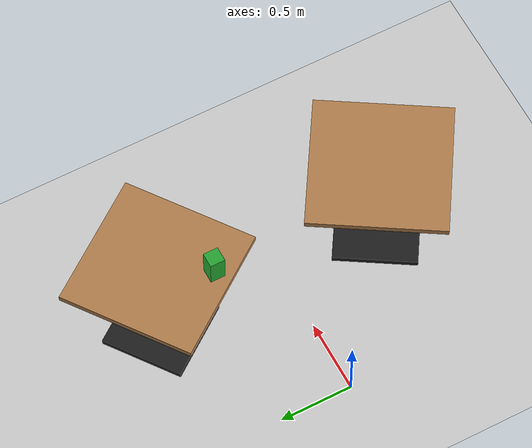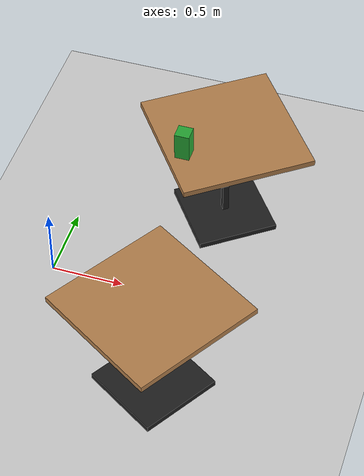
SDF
<sdf version="1.6">
 <world name="default">
  <light name="sun" type="directional">
   <pose>0 0 10 0 -0 0</pose>
   <diffuse>0.8 0.8 0.8 1</diffuse>
   <specular>0.2 0.2 0.2 1</specular>
   <attenuation>
    <range>1000</range>
    <constant>0.9</constant>
    <linear>0.01</linear>
    <quadratic>0.001</quadratic>
   </attenuation>
   <direction>-0.5 0.1 -0.9</direction>
  </light>
  <physics name="dart_1ms" default="1" type="dart">
   <max_step_size>0.001</max_step_size>
   <real_time_factor>1</real_time_factor>
   <real_time_update_rate>1000</real_time_update_rate>
   <dart><solver><solver_type>pgs</solver_type></solver></dart>
  </physics>
  <physics name="dart_2ms" default="0" type="dart">
   <max_step_size>0.002</max_step_size>
   <real_time_factor>1</real_time_factor>
   <real_time_update_rate>500</real_time_update_rate>
   <dart><solver><solver_type>pgs</solver_type></solver></dart>
  </physics>
  <physics name="dart_3ms" default="0" type="dart">
   <max_step_size>0.003</max_step_size>
   <real_time_factor>1</real_time_factor>
   <real_time_update_rate>333</real_time_update_rate>
   <dart><solver><solver_type>pgs</solver_type></solver></dart>
  </physics>
  <physics name="ode_1ms" default="0" type="ode">
   <max_step_size>0.001</max_step_size>
   <real_time_factor>1</real_time_factor>
   <real_time_update_rate>1000</real_time_update_rate>
  </physics>
  <physics name="ode_2ms" default="0" type="ode">
   <max_step_size>0.002</max_step_size>
   <real_time_factor>1</real_time_factor>
   <real_time_update_rate>500</real_time_update_rate>
  </physics>
  <physics name="ode_3ms" default="0" type="ode">
   <max_step_size>0.003</max_step_size>
   <real_time_factor>1</real_time_factor>
   <real_time_update_rate>333</real_time_update_rate>
  </physics>
  <model name="ground_plane">
   <static>1</static>
   <link name="link">
    <collision name="collision">
     <geometry><plane><normal>0 0 1</normal><size>100 100</size></plane></geometry>
     <surface>
      <contact><collide_bitmask>65535</collide_bitmask></contact>
      <friction><ode><mu>100</mu><mu2>50</mu2></ode></friction>
     </surface>
    </collision>
    <visual name="visual">
     <cast_shadows>0</cast_shadows>
     <geometry><plane><normal>0 0 1</normal><size>100 100</size></plane></geometry>
     <material>
      <script><uri>file://media/materials/scripts/gazebo.material</uri><name>Gazebo/Grey</name></script>
     </material>
    </visual>
   </link>
  </model>
  <gravity>0 0 -9.8</gravity>
  <magnetic_field>6e-06 2.3e-05 -4.2e-05</magnetic_field>
  <atmosphere type="adiabatic"/>
  <scene><ambient>0.4 0.4 0.4 1</ambient><background>0.7 0.7 0.7 1</background><shadows>1</shadows></scene>
  <spherical_coordinates>
   <surface_model>EARTH_WGS84</surface_model>
   <latitude_deg>0</latitude_deg>
   <longitude_deg>0</longitude_deg>
   <elevation>0</elevation>
   <heading_deg>0</heading_deg>
  </spherical_coordinates>
  <model name="table_c">
   <link name="link">
    <collision name="surface">
     <pose>0 0 0.755 0 -0 0</pose>
     <geometry><box><size>0.913 0.913 0.04</size></box></geometry>
    </collision>
    <collision name="column">
     <pose>0 0 0.37 0 -0 0</pose>
     <geometry><box><size>0.042 0.042 0.74</size></box></geometry>
    </collision>
    <collision name="base">
     <pose>0 0 0.02 0 -0 0</pose>
     <geometry><box><size>0.56 0.56 0.04</size></box></geometry>
    </collision>
    <visual name="surface">
     <pose>0 0 0.755 0 -0 0</pose>
     <geometry><box><size>0.913 0.913 0.04</size></box></geometry>
     <material>
      <script><uri>file://media/materials/scripts/gazebo.material</uri><name>Gazebo/WoodFloor</name></script>
     </material>
    </visual>
    <visual name="column">
     <pose>0 0 0.37 0 -0 0</pose>
     <geometry><box><size>0.042 0.042 0.74</size></box></geometry>
     <material>
      <script><uri>file://media/materials/scripts/gazebo.material</uri><name>Gazebo/Black</name></script>
     </material>
    </visual>
    <visual name="base">
     <pose>0 0 0.02 0 -0 0</pose>
     <geometry><box><size>0.56 0.56 0.04</size></box></geometry>
     <material>
      <script><uri>file://media/materials/scripts/gazebo.material</uri><name>Gazebo/Black</name></script>
     </material>
    </visual>
    <inertial>
     <inertia><ixx>1</ixx><ixy>0</ixy><ixz>0</ixz><iyy>1</iyy><iyz>0</iyz><izz>1</izz></inertia>
     <mass>1</mass>
    </inertial>
   </link>
   <pose>0.963145 0.862875 -2e-06 7e-06 -1e-06 0.63292</pose>
  </model>
  <model name="table_c_clone">
   <link name="link">
    <collision name="surface">
     <pose>0 0 0.755 0 -0 0</pose>
     <geometry><box><size>0.913 0.913 0.04</size></box></geometry>
    </collision>
    <collision name="column">
     <pose>0 0 0.37 0 -0 0</pose>
     <geometry><box><size>0.042 0.042 0.74</size></box></geometry>
    </collision>
    <collision name="base">
     <pose>0 0 0.02 0 -0 0</pose>
     <geometry><box><size>0.56 0.56 0.04</size></box></geometry>
    </collision>
    <visual name="surface">
     <pose>0 0 0.755 0 -0 0</pose>
     <geometry><box><size>0.913 0.913 0.04</size></box></geometry>
     <material>
      <script><uri>file://media/materials/scripts/gazebo.material</uri><name>Gazebo/WoodFloor</name></script>
     </material>
    </visual>
    <visual name="column">
     <pose>0 0 0.37 0 -0 0</pose>
     <geometry><box><size>0.042 0.042 0.74</size></box></geometry>
     <material>
      <script><uri>file://media/materials/scripts/gazebo.material</uri><name>Gazebo/Black</name></script>
     </material>
    </visual>
    <visual name="base">
     <pose>0 0 0.02 0 -0 0</pose>
     <geometry><box><size>0.56 0.56 0.04</size></box></geometry>
     <material>
      <script><uri>file://media/materials/scripts/gazebo.material</uri><name>Gazebo/Black</name></script>
     </material>
    </visual>
    <inertial>
     <inertia><ixx>1</ixx><ixy>0</ixy><ixz>0</ixz><iyy>1</iyy><iyz>0</iyz><izz>1</izz></inertia>
     <mass>1</mass>
    </inertial>
   </link>
   <pose>0.956842 -0.719608 -1e-06 -1e-06 -4e-06 -0.555848</pose>
  </model>
  <model name="box2">
   <link name="link">
    <inertial>
     <mass>0.3</mass>
     <inertia><ixx>0.00125</ixx><ixy>0</ixy><ixz>0</ixz><iyy>0.00125</iyy><iyz>0</iyz><izz>0.0005</izz></inertia>
    </inertial>
    <collision name="box"><geometry><box><size>0.1 0.1 0.2</size></box></geometry></collision>
    <visual name="box">
     <geometry><box><size>0.1 0.1 0.2</size></box></geometry>
     <material>
      <script><uri>file://media/materials/scripts/gazebo.material</uri><name>Gazebo/Green</name></script>
     </material>
    </visual>
   </link>
   <pose>0.758624 0.570409 0.874993 6e-06 1.1e-05 5.1e-05</pose>
  </model>
 </world>
</sdf>
